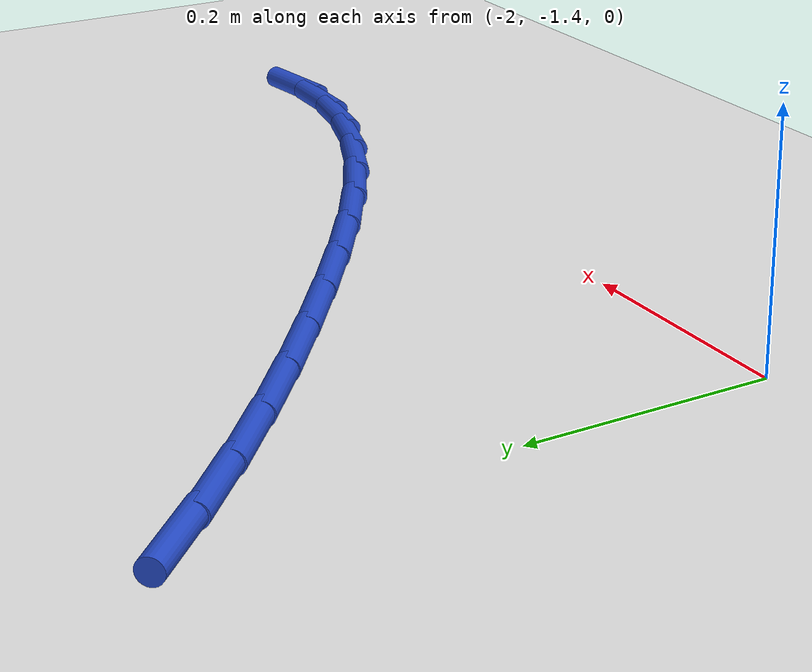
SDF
<sdf version="1.6">
 <world name="default">
  <model name="ground_plane">
   <static>1</static>
   <link name="link">
    <collision name="collision">
     <geometry><plane><normal>0 0 1</normal><size>100 100</size></plane></geometry>
     <surface><friction><ode><mu>100</mu><mu2>50</mu2></ode></friction></surface>
    </collision>
    <visual name="visual">
     <cast_shadows>0</cast_shadows>
     <geometry><plane><normal>0 0 1</normal><size>100 100</size></plane></geometry>
     <material>
      <script><uri>file://media/materials/scripts/gazebo.material</uri><name>Gazebo/WhiteGlow</name></script>
     </material>
    </visual>
   </link>
  </model>
  <model name="line">
   <link name="link_75">
    <pose>-2.0114388537524306 -0.9530839045206504 0.01 0 1.57 -0.7760978472428424</pose>
    <collision name="collision">
     <geometry><cylinder><radius>0.01</radius><length>0.08</length></cylinder></geometry>
    </collision>
    <visual name="visual">
     <material>
      <script><name>Gazebo/Blue</name><uri>file://media/materials/scripts/gazebo.material</uri></script>
     </material>
     <geometry><cylinder><radius>0.01</radius><length>0.08</length></cylinder></geometry>
    </visual>
   </link>
   <link name="link_76">
    <pose>-1.963367714283983 -1.0002691043741505 0.01 0 1.57 -0.736194275130198</pose>
    <collision name="collision">
     <geometry><cylinder><radius>0.01</radius><length>0.08</length></cylinder></geometry>
    </collision>
    <visual name="visual">
     <material>
      <script><name>Gazebo/Blue</name><uri>file://media/materials/scripts/gazebo.material</uri></script>
     </material>
     <geometry><cylinder><radius>0.01</radius><length>0.08</length></cylinder></geometry>
    </visual>
   </link>
   <link name="link_77">
    <pose>-1.9125497993174563 -1.0463169949984101 0.01 0 1.57 -0.7027848893192483</pose>
    <collision name="collision">
     <geometry><cylinder><radius>0.01</radius><length>0.08</length></cylinder></geometry>
    </collision>
    <visual name="visual">
     <material>
      <script><name>Gazebo/Blue</name><uri>file://media/materials/scripts/gazebo.material</uri></script>
     </material>
     <geometry><cylinder><radius>0.01</radius><length>0.08</length></cylinder></geometry>
    </visual>
   </link>
   <link name="link_78">
    <pose>-1.85949745696668 -1.0912555234764918 0.01 0 1.57 -0.6751591045743351</pose>
    <collision name="collision">
     <geometry><cylinder><radius>0.01</radius><length>0.08</length></cylinder></geometry>
    </collision>
    <visual name="visual">
     <material>
      <script><name>Gazebo/Blue</name><uri>file://media/materials/scripts/gazebo.material</uri></script>
     </material>
     <geometry><cylinder><radius>0.01</radius><length>0.08</length></cylinder></geometry>
    </visual>
   </link>
   <link name="link_79">
    <pose>-1.804723035345489 -1.135112636891458 0.01 0 1.57 -0.6527590991792788</pose>
    <collision name="collision">
     <geometry><cylinder><radius>0.01</radius><length>0.08</length></cylinder></geometry>
    </collision>
    <visual name="visual">
     <material>
      <script><name>Gazebo/Blue</name><uri>file://media/materials/scripts/gazebo.material</uri></script>
     </material>
     <geometry><cylinder><radius>0.01</radius><length>0.08</length></cylinder></geometry>
    </visual>
   </link>
   <link name="link_80">
    <pose>-1.7487388825677126 -1.177916282326371 0.01 0 1.57 -0.6349145450939215</pose>
    <collision name="collision">
     <geometry><cylinder><radius>0.01</radius><length>0.08</length></cylinder></geometry>
    </collision>
    <visual name="visual">
     <material>
      <script><name>Gazebo/Blue</name><uri>file://media/materials/scripts/gazebo.material</uri></script>
     </material>
     <geometry><cylinder><radius>0.01</radius><length>0.08</length></cylinder></geometry>
    </visual>
   </link>
   <link name="link_81">
    <pose>-1.692051187441715 -1.2196763509760253 0.01 0 1.57 -0.6144667243891213</pose>
    <collision name="collision">
     <geometry><cylinder><radius>0.01</radius><length>0.08</length></cylinder></geometry>
    </collision>
    <visual name="visual">
     <material>
      <script><name>Gazebo/Blue</name><uri>file://media/materials/scripts/gazebo.material</uri></script>
     </material>
     <geometry><cylinder><radius>0.01</radius><length>0.08</length></cylinder></geometry>
    </visual>
   </link>
   <link name="link_82">
    <pose>-1.6350042081243896 -1.2599280373724049 0.01 0 1.57 -0.5832809938733401</pose>
    <collision name="collision">
     <geometry><cylinder><radius>0.01</radius><length>0.08</length></cylinder></geometry>
    </collision>
    <visual name="visual">
     <material>
      <script><name>Gazebo/Blue</name><uri>file://media/materials/scripts/gazebo.material</uri></script>
     </material>
     <geometry><cylinder><radius>0.01</radius><length>0.08</length></cylinder></geometry>
    </visual>
   </link>
   <link name="link_83">
    <pose>-1.5777681422139125 -1.297696280789472 0.01 0 1.57 -0.5394743382572851</pose>
    <collision name="collision">
     <geometry><cylinder><radius>0.01</radius><length>0.08</length></cylinder></geometry>
    </collision>
    <visual name="visual">
     <material>
      <script><name>Gazebo/Blue</name><uri>file://media/materials/scripts/gazebo.material</uri></script>
     </material>
     <geometry><cylinder><radius>0.01</radius><length>0.08</length></cylinder></geometry>
    </visual>
   </link>
   <link name="link_84">
    <pose>-1.5205045980526433 -1.33198084125912 0.01 0 1.57 -0.48080454126219613</pose>
    <collision name="collision">
     <geometry><cylinder><radius>0.01</radius><length>0.08</length></cylinder></geometry>
    </collision>
    <visual name="visual">
     <material>
      <script><name>Gazebo/Blue</name><uri>file://media/materials/scripts/gazebo.material</uri></script>
     </material>
     <geometry><cylinder><radius>0.01</radius><length>0.08</length></cylinder></geometry>
    </visual>
   </link>
   <link name="link_85">
    <pose>-1.4633751839829434 -1.361781478813244 0.01 0 1.57 -0.4042849188495353</pose>
    <collision name="collision">
     <geometry><cylinder><radius>0.01</radius><length>0.08</length></cylinder></geometry>
    </collision>
    <visual name="visual">
     <material>
      <script><name>Gazebo/Blue</name><uri>file://media/materials/scripts/gazebo.material</uri></script>
     </material>
     <geometry><cylinder><radius>0.01</radius><length>0.08</length></cylinder></geometry>
    </visual>
   </link>
   <link name="link_86">
    <pose>-1.4065415083471753 -1.3860979534837377 0.01 0 1.57 -0.30634688887758776</pose>
    <collision name="collision">
     <geometry><cylinder><radius>0.01</radius><length>0.08</length></cylinder></geometry>
    </collision>
    <visual name="visual">
     <material>
      <script><name>Gazebo/Blue</name><uri>file://media/materials/scripts/gazebo.material</uri></script>
     </material>
     <geometry><cylinder><radius>0.01</radius><length>0.08</length></cylinder></geometry>
    </visual>
   </link>
   <link name="link_87">
    <pose>-1.350165179487698 -1.4039300253024947 0.01 0 1.57 -0.18349209101388173</pose>
    <collision name="collision">
     <geometry><cylinder><radius>0.01</radius><length>0.08</length></cylinder></geometry>
    </collision>
    <visual name="visual">
     <material>
      <script><name>Gazebo/Blue</name><uri>file://media/materials/scripts/gazebo.material</uri></script>
     </material>
     <geometry><cylinder><radius>0.01</radius><length>0.08</length></cylinder></geometry>
    </visual>
   </link>
   <link name="link_88">
    <pose>-1.2944078057468735 -1.41427745430141 0.01 0 1.57 -0.03448161813719371</pose>
    <collision name="collision">
     <geometry><cylinder><radius>0.01</radius><length>0.08</length></cylinder></geometry>
    </collision>
    <visual name="visual">
     <material>
      <script><name>Gazebo/Blue</name><uri>file://media/materials/scripts/gazebo.material</uri></script>
     </material>
     <geometry><cylinder><radius>0.01</radius><length>0.08</length></cylinder></geometry>
    </visual>
   </link>
   <link name="link_89">
    <pose>-1.2394265965151903 -1.4161740470940036 0.01 0 1.57 0.12282033516871894</pose>
    <collision name="collision">
     <geometry><cylinder><radius>0.01</radius><length>0.08</length></cylinder></geometry>
    </collision>
    <visual name="visual">
     <material>
      <script><name>Gazebo/Blue</name><uri>file://media/materials/scripts/gazebo.material</uri></script>
     </material>
     <geometry><cylinder><radius>0.01</radius><length>0.08</length></cylinder></geometry>
    </visual>
   </link>
  </model>
 </world>
</sdf>
